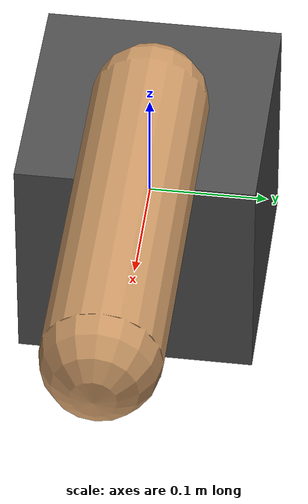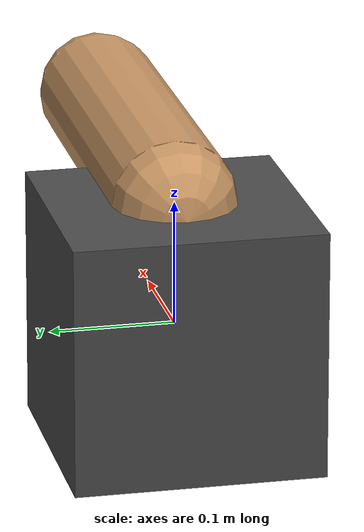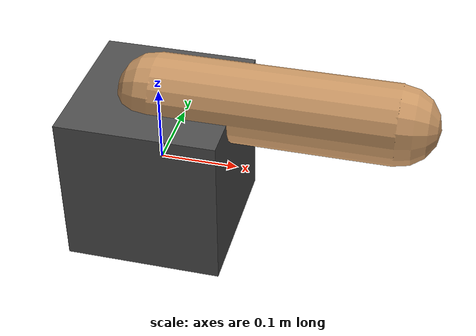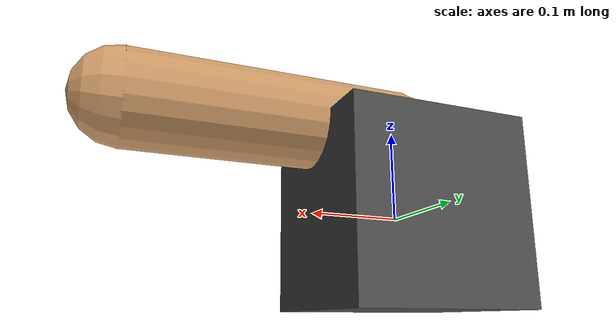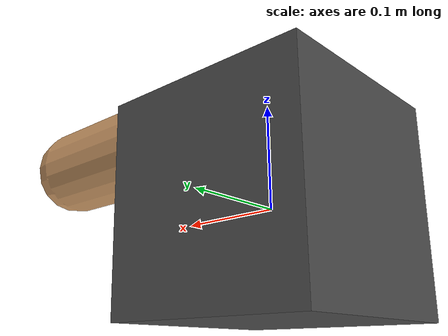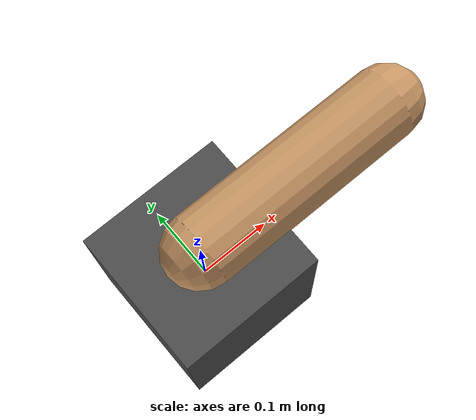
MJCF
<mujoco model="robotic_arm">
  <!-- Set compiler options: here angles are specified in degrees -->
  <compiler angle="degree" />

  <!-- Default settings: all geoms default to this color unless overridden -->
  <default>
    <geom rgba="0.8 0.6 0.4 1"/>
  </default>

  <!-- World definition -->
  <worldbody>
    <!-- Base: fixed to the world -->
    <body name="base" pos="0 0 0">
      <!-- Base geometry: a small box -->
      <geom type="box" size="0.1 0.1 0.1" rgba="0.3 0.3 0.3 1"/>

      <!-- Link: attached to the base via a hinge joint -->
      <body name="link1" pos="0 0 0.1">
        <!-- Hinge joint rotates about the vertical (Z) axis -->
        <joint name="joint1" type="hinge" axis="0 0 1" pos="0 0 0"/>
        <!-- Link geometry: a capsule from the joint to the end of the arm -->
        <geom type="capsule" fromto="0 0 0 0.3 0 0" size="0.05"/>
      </body>
    </body>
  </worldbody>

  <!-- Actuator to control the joint -->
  <actuator>
    <!-- A position actuator controlling 'joint1' with a proportional gain -->
    <position name="act1" joint="joint1" kp="100"/>
  </actuator>
</mujoco>
